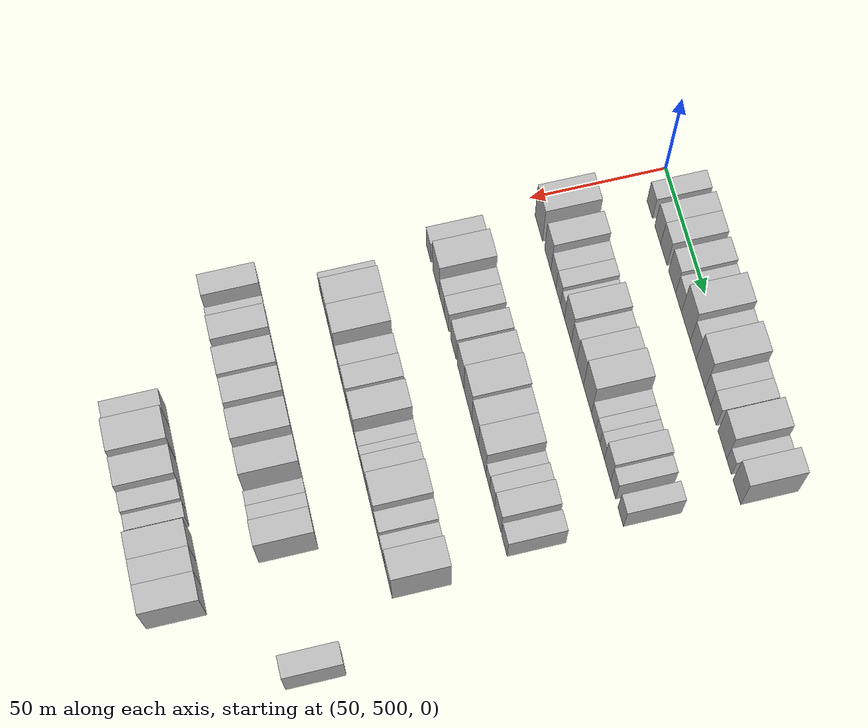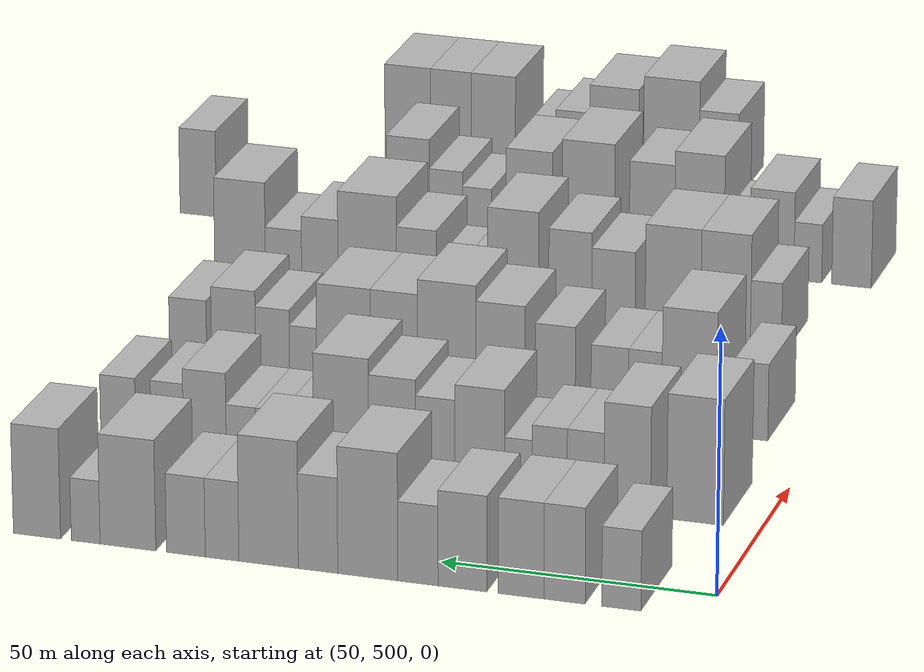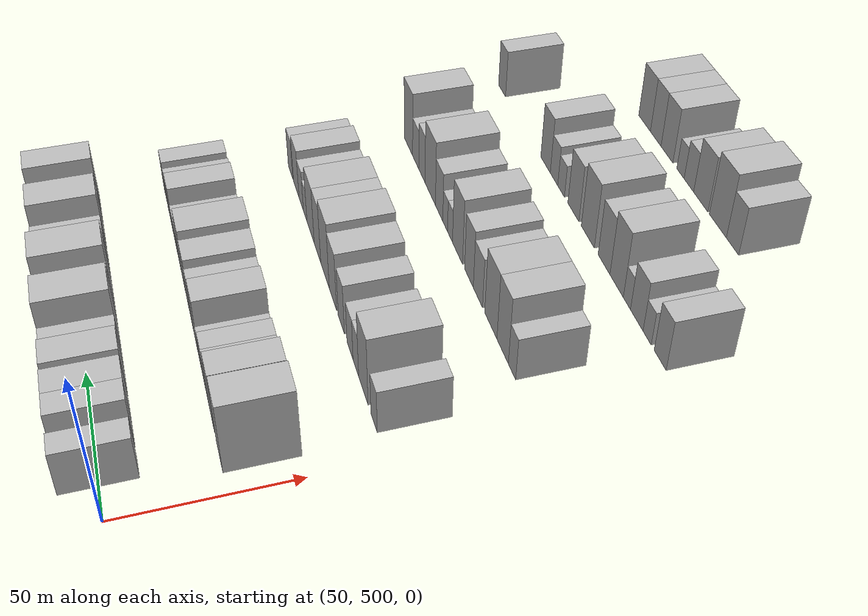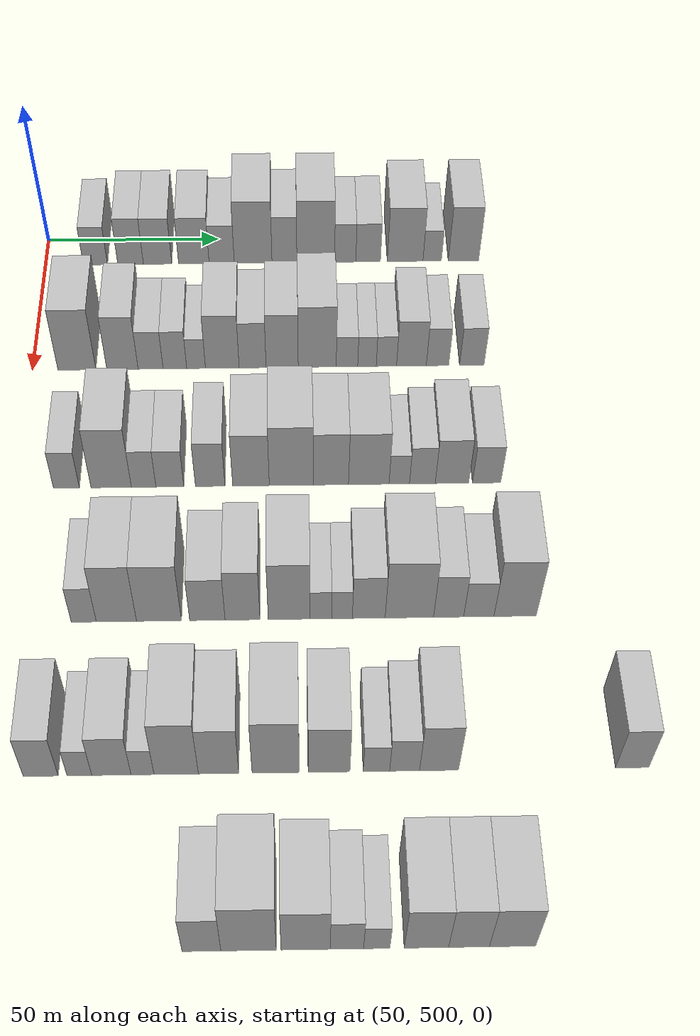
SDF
<sdf version="1.6">
 <world name="default">
  <model name="building_126">
   <static>1</static>
   <pose>50.0000 514.3777 0 0.000000 0.000000 0.000000</pose>
   <link name="link">
    <pose>0 0 7.50 0 0 0</pose>
    <collision name="collision"><geometry><box><size>20.0000 7.0179 15.0000</size></box></geometry></collision>
    <visual name="visual">
     <cast_shadows>0</cast_shadows>
     <geometry><box><size>20.0000 7.0179 15.0000</size></box></geometry>
     <material>
      <script>
       <uri>model://HANNAS_wall/materials/scripts</uri>
       <uri>model://HANNAS_wall/materials/textures</uri>
       <name>vrc/HANNAS_wall</name>
      </script>
     </material>
    </visual>
   </link>
  </model>
  <model name="building_127">
   <static>1</static>
   <pose>50.0000 524.6020 0 0.000000 0.000000 0.000000</pose>
   <link name="link">
    <pose>0 0 9.00 0 0 0</pose>
    <collision name="collision"><geometry><box><size>20.0000 7.4308 18.0000</size></box></geometry></collision>
    <visual name="visual">
     <cast_shadows>0</cast_shadows>
     <geometry><box><size>20.0000 7.4308 18.0000</size></box></geometry>
     <material>
      <script>
       <uri>model://HANNAS_wall/materials/scripts</uri>
       <uri>model://HANNAS_wall/materials/textures</uri>
       <name>vrc/HANNAS_wall</name>
      </script>
     </material>
    </visual>
   </link>
  </model>
  <model name="building_128">
   <static>1</static>
   <pose>50.0000 532.4468 0 0.000000 0.000000 0.000000</pose>
   <link name="link">
    <pose>0 0 9.00 0 0 0</pose>
    <collision name="collision"><geometry><box><size>20.0000 8.2587 18.0000</size></box></geometry></collision>
    <visual name="visual">
     <cast_shadows>0</cast_shadows>
     <geometry><box><size>20.0000 8.2587 18.0000</size></box></geometry>
     <material>
      <script>
       <uri>model://HANNAS_wall/materials/scripts</uri>
       <uri>model://HANNAS_wall/materials/textures</uri>
       <name>vrc/HANNAS_wall</name>
      </script>
     </material>
    </visual>
   </link>
  </model>
  <model name="building_129">
   <static>1</static>
   <pose>50.0000 543.0096 0 0.000000 0.000000 0.000000</pose>
   <link name="link">
    <pose>0 0 9.00 0 0 0</pose>
    <collision name="collision"><geometry><box><size>20.0000 8.8668 18.0000</size></box></geometry></collision>
    <visual name="visual">
     <cast_shadows>0</cast_shadows>
     <geometry><box><size>20.0000 8.8668 18.0000</size></box></geometry>
     <material>
      <script>
       <uri>model://HANNAS_wall/materials/scripts</uri>
       <uri>model://HANNAS_wall/materials/textures</uri>
       <name>vrc/HANNAS_wall</name>
      </script>
     </material>
    </visual>
   </link>
  </model>
  <model name="building_130">
   <static>1</static>
   <pose>50.0000 551.1101 0 0.000000 0.000000 0.000000</pose>
   <link name="link">
    <pose>0 0 7.50 0 0 0</pose>
    <collision name="collision"><geometry><box><size>20.0000 7.3343 15.0000</size></box></geometry></collision>
    <visual name="visual">
     <cast_shadows>0</cast_shadows>
     <geometry><box><size>20.0000 7.3343 15.0000</size></box></geometry>
     <material>
      <script>
       <uri>model://HANNAS_wall/materials/scripts</uri>
       <uri>model://HANNAS_wall/materials/textures</uri>
       <name>vrc/HANNAS_wall</name>
      </script>
     </material>
    </visual>
   </link>
  </model>
  <model name="building_131">
   <static>1</static>
   <pose>50.0000 560.2596 0 0.000000 0.000000 0.000000</pose>
   <link name="link">
    <pose>0 0 12.00 0 0 0</pose>
    <collision name="collision"><geometry><box><size>20.0000 10.9645 24.0000</size></box></geometry></collision>
    <visual name="visual">
     <cast_shadows>0</cast_shadows>
     <geometry><box><size>20.0000 10.9645 24.0000</size></box></geometry>
     <material>
      <script>
       <uri>model://HANNAS_wall/materials/scripts</uri>
       <uri>model://HANNAS_wall/materials/textures</uri>
       <name>vrc/HANNAS_wall</name>
      </script>
     </material>
    </visual>
   </link>
  </model>
  <model name="building_132">
   <static>1</static>
   <pose>50.0000 569.3659 0 0.000000 0.000000 0.000000</pose>
   <link name="link">
    <pose>0 0 9.00 0 0 0</pose>
    <collision name="collision"><geometry><box><size>20.0000 7.2482 18.0000</size></box></geometry></collision>
    <visual name="visual">
     <cast_shadows>0</cast_shadows>
     <geometry><box><size>20.0000 7.2482 18.0000</size></box></geometry>
     <material>
      <script>
       <uri>model://HANNAS_wall/materials/scripts</uri>
       <uri>model://HANNAS_wall/materials/textures</uri>
       <name>vrc/HANNAS_wall</name>
      </script>
     </material>
    </visual>
   </link>
  </model>
  <model name="building_133">
   <static>1</static>
   <pose>50.0000 578.4641 0 0.000000 0.000000 0.000000</pose>
   <link name="link">
    <pose>0 0 12.00 0 0 0</pose>
    <collision name="collision"><geometry><box><size>20.0000 10.9482 24.0000</size></box></geometry></collision>
    <visual name="visual">
     <cast_shadows>0</cast_shadows>
     <geometry><box><size>20.0000 10.9482 24.0000</size></box></geometry>
     <material>
      <script>
       <uri>model://HANNAS_wall/materials/scripts</uri>
       <uri>model://HANNAS_wall/materials/textures</uri>
       <name>vrc/HANNAS_wall</name>
      </script>
     </material>
    </visual>
   </link>
  </model>
  <model name="building_134">
   <static>1</static>
   <pose>50.0000 587.0475 0 0.000000 0.000000 0.000000</pose>
   <link name="link">
    <pose>0 0 7.50 0 0 0</pose>
    <collision name="collision"><geometry><box><size>20.0000 6.2187 15.0000</size></box></geometry></collision>
    <visual name="visual">
     <cast_shadows>0</cast_shadows>
     <geometry><box><size>20.0000 6.2187 15.0000</size></box></geometry>
     <material>
      <script>
       <uri>model://HANNAS_wall/materials/scripts</uri>
       <uri>model://HANNAS_wall/materials/textures</uri>
       <name>vrc/HANNAS_wall</name>
      </script>
     </material>
    </visual>
   </link>
  </model>
  <model name="building_135">
   <static>1</static>
   <pose>50.0000 593.7524 0 0.000000 0.000000 0.000000</pose>
   <link name="link">
    <pose>0 0 7.50 0 0 0</pose>
    <collision name="collision"><geometry><box><size>20.0000 7.1911 15.0000</size></box></geometry></collision>
    <visual name="visual">
     <cast_shadows>0</cast_shadows>
     <geometry><box><size>20.0000 7.1911 15.0000</size></box></geometry>
     <material>
      <script>
       <uri>model://HANNAS_wall/materials/scripts</uri>
       <uri>model://HANNAS_wall/materials/textures</uri>
       <name>vrc/HANNAS_wall</name>
      </script>
     </material>
    </visual>
   </link>
  </model>
  <model name="building_136">
   <static>1</static>
   <pose>50.0000 604.5498 0 0.000000 0.000000 0.000000</pose>
   <link name="link">
    <pose>0 0 10.50 0 0 0</pose>
    <collision name="collision"><geometry><box><size>20.0000 10.4036 21.0000</size></box></geometry></collision>
    <visual name="visual">
     <cast_shadows>0</cast_shadows>
     <geometry><box><size>20.0000 10.4036 21.0000</size></box></geometry>
     <material>
      <script>
       <uri>model://HANNAS_wall/materials/scripts</uri>
       <uri>model://HANNAS_wall/materials/textures</uri>
       <name>vrc/HANNAS_wall</name>
      </script>
     </material>
    </visual>
   </link>
  </model>
  <model name="building_137">
   <static>1</static>
   <pose>50.0000 612.4491 0 0.000000 0.000000 0.000000</pose>
   <link name="link">
    <pose>0 0 6.00 0 0 0</pose>
    <collision name="collision"><geometry><box><size>20.0000 5.3950 12.0000</size></box></geometry></collision>
    <visual name="visual">
     <cast_shadows>0</cast_shadows>
     <geometry><box><size>20.0000 5.3950 12.0000</size></box></geometry>
     <material>
      <script>
       <uri>model://HANNAS_wall/materials/scripts</uri>
       <uri>model://HANNAS_wall/materials/textures</uri>
       <name>vrc/HANNAS_wall</name>
      </script>
     </material>
    </visual>
   </link>
  </model>
  <model name="building_138">
   <static>1</static>
   <pose>50.0000 621.5763 0 0.000000 0.000000 0.000000</pose>
   <link name="link">
    <pose>0 0 10.50 0 0 0</pose>
    <collision name="collision"><geometry><box><size>20.0000 8.8594 21.0000</size></box></geometry></collision>
    <visual name="visual">
     <cast_shadows>0</cast_shadows>
     <geometry><box><size>20.0000 8.8594 21.0000</size></box></geometry>
     <material>
      <script>
       <uri>model://HANNAS_wall/materials/scripts</uri>
       <uri>model://HANNAS_wall/materials/textures</uri>
       <name>vrc/HANNAS_wall</name>
      </script>
     </material>
    </visual>
   </link>
  </model>
  <model name="building_260">
   <static>1</static>
   <pose>90.0000 512.1767 0 0.000000 0.000000 0.000000</pose>
   <link name="link">
    <pose>0 0 12.00 0 0 0</pose>
    <collision name="collision"><geometry><box><size>20.0000 10.4046 24.0000</size></box></geometry></collision>
    <visual name="visual">
     <cast_shadows>0</cast_shadows>
     <geometry><box><size>20.0000 10.4046 24.0000</size></box></geometry>
     <material>
      <script>
       <uri>model://HANNAS_wall/materials/scripts</uri>
       <uri>model://HANNAS_wall/materials/textures</uri>
       <name>vrc/HANNAS_wall</name>
      </script>
     </material>
    </visual>
   </link>
  </model>
  <model name="building_261">
   <static>1</static>
   <pose>90.0000 524.6724 0 0.000000 0.000000 0.000000</pose>
   <link name="link">
    <pose>0 0 10.50 0 0 0</pose>
    <collision name="collision"><geometry><box><size>20.0000 8.5867 21.0000</size></box></geometry></collision>
    <visual name="visual">
     <cast_shadows>0</cast_shadows>
     <geometry><box><size>20.0000 8.5867 21.0000</size></box></geometry>
     <material>
      <script>
       <uri>model://HANNAS_wall/materials/scripts</uri>
       <uri>model://HANNAS_wall/materials/textures</uri>
       <name>vrc/HANNAS_wall</name>
      </script>
     </material>
    </visual>
   </link>
  </model>
  <model name="building_262">
   <static>1</static>
   <pose>90.0000 532.3914 0 0.000000 0.000000 0.000000</pose>
   <link name="link">
    <pose>0 0 7.50 0 0 0</pose>
    <collision name="collision"><geometry><box><size>20.0000 6.8514 15.0000</size></box></geometry></collision>
    <visual name="visual">
     <cast_shadows>0</cast_shadows>
     <geometry><box><size>20.0000 6.8514 15.0000</size></box></geometry>
     <material>
      <script>
       <uri>model://HANNAS_wall/materials/scripts</uri>
       <uri>model://HANNAS_wall/materials/textures</uri>
       <name>vrc/HANNAS_wall</name>
      </script>
     </material>
    </visual>
   </link>
  </model>
  <model name="building_263">
   <static>1</static>
   <pose>90.0000 539.0624 0 0.000000 0.000000 0.000000</pose>
   <link name="link">
    <pose>0 0 7.50 0 0 0</pose>
    <collision name="collision"><geometry><box><size>20.0000 6.4906 15.0000</size></box></geometry></collision>
    <visual name="visual">
     <cast_shadows>0</cast_shadows>
     <geometry><box><size>20.0000 6.4906 15.0000</size></box></geometry>
     <material>
      <script>
       <uri>model://HANNAS_wall/materials/scripts</uri>
       <uri>model://HANNAS_wall/materials/textures</uri>
       <name>vrc/HANNAS_wall</name>
      </script>
     </material>
    </visual>
   </link>
  </model>
  <model name="building_264">
   <static>1</static>
   <pose>90.0000 544.8872 0 0.000000 0.000000 0.000000</pose>
   <link name="link">
    <pose>0 0 6.00 0 0 0</pose>
    <collision name="collision"><geometry><box><size>20.0000 5.1589 12.0000</size></box></geometry></collision>
    <visual name="visual">
     <cast_shadows>0</cast_shadows>
     <geometry><box><size>20.0000 5.1589 12.0000</size></box></geometry>
     <material>
      <script>
       <uri>model://HANNAS_wall/materials/scripts</uri>
       <uri>model://HANNAS_wall/materials/textures</uri>
       <name>vrc/HANNAS_wall</name>
      </script>
     </material>
    </visual>
   </link>
  </model>
  <model name="building_265">
   <static>1</static>
   <pose>90.0000 552.0892 0 0.000000 0.000000 0.000000</pose>
   <link name="link">
    <pose>0 0 10.50 0 0 0</pose>
    <collision name="collision"><geometry><box><size>20.0000 9.2452 21.0000</size></box></geometry></collision>
    <visual name="visual">
     <cast_shadows>0</cast_shadows>
     <geometry><box><size>20.0000 9.2452 21.0000</size></box></geometry>
     <material>
      <script>
       <uri>model://HANNAS_wall/materials/scripts</uri>
       <uri>model://HANNAS_wall/materials/textures</uri>
       <name>vrc/HANNAS_wall</name>
      </script>
     </material>
    </visual>
   </link>
  </model>
  <model name="building_266">
   <static>1</static>
   <pose>90.0000 560.4127 0 0.000000 0.000000 0.000000</pose>
   <link name="link">
    <pose>0 0 9.00 0 0 0</pose>
    <collision name="collision"><geometry><box><size>20.0000 7.4017 18.0000</size></box></geometry></collision>
    <visual name="visual">
     <cast_shadows>0</cast_shadows>
     <geometry><box><size>20.0000 7.4017 18.0000</size></box></geometry>
     <material>
      <script>
       <uri>model://HANNAS_wall/materials/scripts</uri>
       <uri>model://HANNAS_wall/materials/textures</uri>
       <name>vrc/HANNAS_wall</name>
      </script>
     </material>
    </visual>
   </link>
  </model>
  <model name="building_267">
   <static>1</static>
   <pose>90.0000 568.5266 0 0.000000 0.000000 0.000000</pose>
   <link name="link">
    <pose>0 0 10.50 0 0 0</pose>
    <collision name="collision"><geometry><box><size>20.0000 8.8262 21.0000</size></box></geometry></collision>
    <visual name="visual">
     <cast_shadows>0</cast_shadows>
     <geometry><box><size>20.0000 8.8262 21.0000</size></box></geometry>
     <material>
      <script>
       <uri>model://HANNAS_wall/materials/scripts</uri>
       <uri>model://HANNAS_wall/materials/textures</uri>
       <name>vrc/HANNAS_wall</name>
      </script>
     </material>
    </visual>
   </link>
  </model>
  <model name="building_268">
   <static>1</static>
   <pose>90.0000 578.1604 0 0.000000 0.000000 0.000000</pose>
   <link name="link">
    <pose>0 0 12.00 0 0 0</pose>
    <collision name="collision"><geometry><box><size>20.0000 10.4413 24.0000</size></box></geometry></collision>
    <visual name="visual">
     <cast_shadows>0</cast_shadows>
     <geometry><box><size>20.0000 10.4413 24.0000</size></box></geometry>
     <material>
      <script>
       <uri>model://HANNAS_wall/materials/scripts</uri>
       <uri>model://HANNAS_wall/materials/textures</uri>
       <name>vrc/HANNAS_wall</name>
      </script>
     </material>
    </visual>
   </link>
  </model>
  <model name="building_269">
   <static>1</static>
   <pose>90.0000 586.3429 0 0.000000 0.000000 0.000000</pose>
   <link name="link">
    <pose>0 0 6.00 0 0 0</pose>
    <collision name="collision"><geometry><box><size>20.0000 5.9238 12.0000</size></box></geometry></collision>
    <visual name="visual">
     <cast_shadows>0</cast_shadows>
     <geometry><box><size>20.0000 5.9238 12.0000</size></box></geometry>
     <material>
      <script>
       <uri>model://HANNAS_wall/materials/scripts</uri>
       <uri>model://HANNAS_wall/materials/textures</uri>
       <name>vrc/HANNAS_wall</name>
      </script>
     </material>
    </visual>
   </link>
  </model>
  <model name="building_270">
   <static>1</static>
   <pose>90.0000 591.8564 0 0.000000 0.000000 0.000000</pose>
   <link name="link">
    <pose>0 0 6.00 0 0 0</pose>
    <collision name="collision"><geometry><box><size>20.0000 5.1031 12.0000</size></box></geometry></collision>
    <visual name="visual">
     <cast_shadows>0</cast_shadows>
     <geometry><box><size>20.0000 5.1031 12.0000</size></box></geometry>
     <material>
      <script>
       <uri>model://HANNAS_wall/materials/scripts</uri>
       <uri>model://HANNAS_wall/materials/textures</uri>
       <name>vrc/HANNAS_wall</name>
      </script>
     </material>
    </visual>
   </link>
  </model>
  <model name="building_271">
   <static>1</static>
   <pose>90.0000 597.2039 0 0.000000 0.000000 0.000000</pose>
   <link name="link">
    <pose>0 0 6.00 0 0 0</pose>
    <collision name="collision"><geometry><box><size>20.0000 5.5918 12.0000</size></box></geometry></collision>
    <visual name="visual">
     <cast_shadows>0</cast_shadows>
     <geometry><box><size>20.0000 5.5918 12.0000</size></box></geometry>
     <material>
      <script>
       <uri>model://HANNAS_wall/materials/scripts</uri>
       <uri>model://HANNAS_wall/materials/textures</uri>
       <name>vrc/HANNAS_wall</name>
      </script>
     </material>
    </visual>
   </link>
  </model>
  <model name="building_272">
   <static>1</static>
   <pose>90.0000 604.0947 0 0.000000 0.000000 0.000000</pose>
   <link name="link">
    <pose>0 0 9.00 0 0 0</pose>
    <collision name="collision"><geometry><box><size>20.0000 8.1898 18.0000</size></box></geometry></collision>
    <visual name="visual">
     <cast_shadows>0</cast_shadows>
     <geometry><box><size>20.0000 8.1898 18.0000</size></box></geometry>
     <material>
      <script>
       <uri>model://HANNAS_wall/materials/scripts</uri>
       <uri>model://HANNAS_wall/materials/textures</uri>
       <name>vrc/HANNAS_wall</name>
      </script>
     </material>
    </visual>
   </link>
  </model>
  <model name="building_273">
   <static>1</static>
   <pose>90.0000 611.2768 0 0.000000 0.000000 0.000000</pose>
   <link name="link">
    <pose>0 0 7.50 0 0 0</pose>
    <collision name="collision"><geometry><box><size>20.0000 6.1744 15.0000</size></box></geometry></collision>
    <visual name="visual">
     <cast_shadows>0</cast_shadows>
     <geometry><box><size>20.0000 6.1744 15.0000</size></box></geometry>
     <material>
      <script>
       <uri>model://HANNAS_wall/materials/scripts</uri>
       <uri>model://HANNAS_wall/materials/textures</uri>
       <name>vrc/HANNAS_wall</name>
      </script>
     </material>
    </visual>
   </link>
  </model>
  <model name="building_274">
   <static>1</static>
   <pose>90.0000 620.7329 0 0.000000 0.000000 0.000000</pose>
   <link name="link">
    <pose>0 0 7.50 0 0 0</pose>
    <collision name="collision"><geometry><box><size>20.0000 6.7377 15.0000</size></box></geometry></collision>
    <visual name="visual">
     <cast_shadows>0</cast_shadows>
     <geometry><box><size>20.0000 6.7377 15.0000</size></box></geometry>
     <material>
      <script>
       <uri>model://HANNAS_wall/materials/scripts</uri>
       <uri>model://HANNAS_wall/materials/textures</uri>
       <name>vrc/HANNAS_wall</name>
      </script>
     </material>
    </visual>
   </link>
  </model>
  <model name="building_394">
   <static>1</static>
   <pose>130.0000 512.6550 0 0.000000 0.000000 0.000000</pose>
   <link name="link">
    <pose>0 0 7.50 0 0 0</pose>
    <collision name="collision"><geometry><box><size>20.0000 6.6731 15.0000</size></box></geometry></collision>
    <visual name="visual">
     <cast_shadows>0</cast_shadows>
     <geometry><box><size>20.0000 6.6731 15.0000</size></box></geometry>
     <material>
      <script>
       <uri>model://HANNAS_wall/materials/scripts</uri>
       <uri>model://HANNAS_wall/materials/textures</uri>
       <name>vrc/HANNAS_wall</name>
      </script>
     </material>
    </visual>
   </link>
  </model>
  <model name="building_395">
   <static>1</static>
   <pose>130.0000 524.1997 0 0.000000 0.000000 0.000000</pose>
   <link name="link">
    <pose>0 0 12.00 0 0 0</pose>
    <collision name="collision"><geometry><box><size>20.0000 10.4162 24.0000</size></box></geometry></collision>
    <visual name="visual">
     <cast_shadows>0</cast_shadows>
     <geometry><box><size>20.0000 10.4162 24.0000</size></box></geometry>
     <material>
      <script>
       <uri>model://HANNAS_wall/materials/scripts</uri>
       <uri>model://HANNAS_wall/materials/textures</uri>
       <name>vrc/HANNAS_wall</name>
      </script>
     </material>
    </visual>
   </link>
  </model>
  <model name="building_396">
   <static>1</static>
   <pose>130.0000 532.5850 0 0.000000 0.000000 0.000000</pose>
   <link name="link">
    <pose>0 0 7.50 0 0 0</pose>
    <collision name="collision"><geometry><box><size>20.0000 6.3542 15.0000</size></box></geometry></collision>
    <visual name="visual">
     <cast_shadows>0</cast_shadows>
     <geometry><box><size>20.0000 6.3542 15.0000</size></box></geometry>
     <material>
      <script>
       <uri>model://HANNAS_wall/materials/scripts</uri>
       <uri>model://HANNAS_wall/materials/textures</uri>
       <name>vrc/HANNAS_wall</name>
      </script>
     </material>
    </visual>
   </link>
  </model>
  <model name="building_397">
   <static>1</static>
   <pose>130.0000 539.3595 0 0.000000 0.000000 0.000000</pose>
   <link name="link">
    <pose>0 0 7.50 0 0 0</pose>
    <collision name="collision"><geometry><box><size>20.0000 7.1948 15.0000</size></box></geometry></collision>
    <visual name="visual">
     <cast_shadows>0</cast_shadows>
     <geometry><box><size>20.0000 7.1948 15.0000</size></box></geometry>
     <material>
      <script>
       <uri>model://HANNAS_wall/materials/scripts</uri>
       <uri>model://HANNAS_wall/materials/textures</uri>
       <name>vrc/HANNAS_wall</name>
      </script>
     </material>
    </visual>
   </link>
  </model>
  <model name="building_398">
   <static>1</static>
   <pose>130.0000 549.7693 0 0.000000 0.000000 0.000000</pose>
   <link name="link">
    <pose>0 0 9.00 0 0 0</pose>
    <collision name="collision"><geometry><box><size>20.0000 7.6249 18.0000</size></box></geometry></collision>
    <visual name="visual">
     <cast_shadows>0</cast_shadows>
     <geometry><box><size>20.0000 7.6249 18.0000</size></box></geometry>
     <material>
      <script>
       <uri>model://HANNAS_wall/materials/scripts</uri>
       <uri>model://HANNAS_wall/materials/textures</uri>
       <name>vrc/HANNAS_wall</name>
      </script>
     </material>
    </visual>
   </link>
  </model>
  <model name="building_399">
   <static>1</static>
   <pose>130.0000 560.3059 0 0.000000 0.000000 0.000000</pose>
   <link name="link">
    <pose>0 0 10.50 0 0 0</pose>
    <collision name="collision"><geometry><box><size>20.0000 9.4483 21.0000</size></box></geometry></collision>
    <visual name="visual">
     <cast_shadows>0</cast_shadows>
     <geometry><box><size>20.0000 9.4483 21.0000</size></box></geometry>
     <material>
      <script>
       <uri>model://HANNAS_wall/materials/scripts</uri>
       <uri>model://HANNAS_wall/materials/textures</uri>
       <name>vrc/HANNAS_wall</name>
      </script>
     </material>
    </visual>
   </link>
  </model>
  <model name="building_400">
   <static>1</static>
   <pose>130.0000 570.6933 0 0.000000 0.000000 0.000000</pose>
   <link name="link">
    <pose>0 0 12.00 0 0 0</pose>
    <collision name="collision"><geometry><box><size>20.0000 11.3264 24.0000</size></box></geometry></collision>
    <visual name="visual">
     <cast_shadows>0</cast_shadows>
     <geometry><box><size>20.0000 11.3264 24.0000</size></box></geometry>
     <material>
      <script>
       <uri>model://HANNAS_wall/materials/scripts</uri>
       <uri>model://HANNAS_wall/materials/textures</uri>
       <name>vrc/HANNAS_wall</name>
      </script>
     </material>
    </visual>
   </link>
  </model>
  <model name="building_401">
   <static>1</static>
   <pose>130.0000 580.9328 0 0.000000 0.000000 0.000000</pose>
   <link name="link">
    <pose>0 0 10.50 0 0 0</pose>
    <collision name="collision"><geometry><box><size>20.0000 9.1527 21.0000</size></box></geometry></collision>
    <visual name="visual">
     <cast_shadows>0</cast_shadows>
     <geometry><box><size>20.0000 9.1527 21.0000</size></box></geometry>
     <material>
      <script>
       <uri>model://HANNAS_wall/materials/scripts</uri>
       <uri>model://HANNAS_wall/materials/textures</uri>
       <name>vrc/HANNAS_wall</name>
      </script>
     </material>
    </visual>
   </link>
  </model>
  <model name="building_402">
   <static>1</static>
   <pose>130.0000 590.7539 0 0.000000 0.000000 0.000000</pose>
   <link name="link">
    <pose>0 0 10.50 0 0 0</pose>
    <collision name="collision"><geometry><box><size>20.0000 10.4896 21.0000</size></box></geometry></collision>
    <visual name="visual">
     <cast_shadows>0</cast_shadows>
     <geometry><box><size>20.0000 10.4896 21.0000</size></box></geometry>
     <material>
      <script>
       <uri>model://HANNAS_wall/materials/scripts</uri>
       <uri>model://HANNAS_wall/materials/textures</uri>
       <name>vrc/HANNAS_wall</name>
      </script>
     </material>
    </visual>
   </link>
  </model>
  <model name="building_403">
   <static>1</static>
   <pose>130.0000 598.6498 0 0.000000 0.000000 0.000000</pose>
   <link name="link">
    <pose>0 0 6.00 0 0 0</pose>
    <collision name="collision"><geometry><box><size>20.0000 5.3022 12.0000</size></box></geometry></collision>
    <visual name="visual">
     <cast_shadows>0</cast_shadows>
     <geometry><box><size>20.0000 5.3022 12.0000</size></box></geometry>
     <material>
      <script>
       <uri>model://HANNAS_wall/materials/scripts</uri>
       <uri>model://HANNAS_wall/materials/textures</uri>
       <name>vrc/HANNAS_wall</name>
      </script>
     </material>
    </visual>
   </link>
  </model>
  <model name="building_404">
   <static>1</static>
   <pose>130.0000 604.6356 0 0.000000 0.000000 0.000000</pose>
   <link name="link">
    <pose>0 0 7.50 0 0 0</pose>
    <collision name="collision"><geometry><box><size>20.0000 6.6693 15.0000</size></box></geometry></collision>
    <visual name="visual">
     <cast_shadows>0</cast_shadows>
     <geometry><box><size>20.0000 6.6693 15.0000</size></box></geometry>
     <material>
      <script>
       <uri>model://HANNAS_wall/materials/scripts</uri>
       <uri>model://HANNAS_wall/materials/textures</uri>
       <name>vrc/HANNAS_wall</name>
      </script>
     </material>
    </visual>
   </link>
  </model>
  <model name="building_405">
   <static>1</static>
   <pose>130.0000 612.2999 0 0.000000 0.000000 0.000000</pose>
   <link name="link">
    <pose>0 0 9.00 0 0 0</pose>
    <collision name="collision"><geometry><box><size>20.0000 8.6594 18.0000</size></box></geometry></collision>
    <visual name="visual">
     <cast_shadows>0</cast_shadows>
     <geometry><box><size>20.0000 8.6594 18.0000</size></box></geometry>
     <material>
      <script>
       <uri>model://HANNAS_wall/materials/scripts</uri>
       <uri>model://HANNAS_wall/materials/textures</uri>
       <name>vrc/HANNAS_wall</name>
      </script>
     </material>
    </visual>
   </link>
  </model>
  <model name="building_406">
   <static>1</static>
   <pose>130.0000 621.2945 0 0.000000 0.000000 0.000000</pose>
   <link name="link">
    <pose>0 0 7.50 0 0 0</pose>
    <collision name="collision"><geometry><box><size>20.0000 7.3297 15.0000</size></box></geometry></collision>
    <visual name="visual">
     <cast_shadows>0</cast_shadows>
     <geometry><box><size>20.0000 7.3297 15.0000</size></box></geometry>
     <material>
      <script>
       <uri>model://HANNAS_wall/materials/scripts</uri>
       <uri>model://HANNAS_wall/materials/textures</uri>
       <name>vrc/HANNAS_wall</name>
      </script>
     </material>
    </visual>
   </link>
  </model>
  <model name="building_531">
   <static>1</static>
   <pose>170.0000 520.1958 0 0.000000 0.000000 0.000000</pose>
   <link name="link">
    <pose>0 0 7.50 0 0 0</pose>
    <collision name="collision"><geometry><box><size>20.0000 6.0627 15.0000</size></box></geometry></collision>
    <visual name="visual">
     <cast_shadows>0</cast_shadows>
     <geometry><box><size>20.0000 6.0627 15.0000</size></box></geometry>
     <material>
      <script>
       <uri>model://HANNAS_wall/materials/scripts</uri>
       <uri>model://HANNAS_wall/materials/textures</uri>
       <name>vrc/HANNAS_wall</name>
      </script>
     </material>
    </visual>
   </link>
  </model>
  <model name="building_532">
   <static>1</static>
   <pose>170.0000 528.0854 0 0.000000 0.000000 0.000000</pose>
   <link name="link">
    <pose>0 0 12.00 0 0 0</pose>
    <collision name="collision"><geometry><box><size>20.0000 9.7165 24.0000</size></box></geometry></collision>
    <visual name="visual">
     <cast_shadows>0</cast_shadows>
     <geometry><box><size>20.0000 9.7165 24.0000</size></box></geometry>
     <material>
      <script>
       <uri>model://HANNAS_wall/materials/scripts</uri>
       <uri>model://HANNAS_wall/materials/textures</uri>
       <name>vrc/HANNAS_wall</name>
      </script>
     </material>
    </visual>
   </link>
  </model>
  <model name="building_533">
   <static>1</static>
   <pose>170.0000 538.3766 0 0.000000 0.000000 0.000000</pose>
   <link name="link">
    <pose>0 0 12.00 0 0 0</pose>
    <collision name="collision"><geometry><box><size>20.0000 10.8659 24.0000</size></box></geometry></collision>
    <visual name="visual">
     <cast_shadows>0</cast_shadows>
     <geometry><box><size>20.0000 10.8659 24.0000</size></box></geometry>
     <material>
      <script>
       <uri>model://HANNAS_wall/materials/scripts</uri>
       <uri>model://HANNAS_wall/materials/textures</uri>
       <name>vrc/HANNAS_wall</name>
      </script>
     </material>
    </visual>
   </link>
  </model>
  <model name="building_534">
   <static>1</static>
   <pose>170.0000 550.0888 0 0.000000 0.000000 0.000000</pose>
   <link name="link">
    <pose>0 0 9.00 0 0 0</pose>
    <collision name="collision"><geometry><box><size>20.0000 8.5584 18.0000</size></box></geometry></collision>
    <visual name="visual">
     <cast_shadows>0</cast_shadows>
     <geometry><box><size>20.0000 8.5584 18.0000</size></box></geometry>
     <material>
      <script>
       <uri>model://HANNAS_wall/materials/scripts</uri>
       <uri>model://HANNAS_wall/materials/textures</uri>
       <name>vrc/HANNAS_wall</name>
      </script>
     </material>
    </visual>
   </link>
  </model>
  <model name="building_535">
   <static>1</static>
   <pose>170.0000 558.5925 0 0.000000 0.000000 0.000000</pose>
   <link name="link">
    <pose>0 0 10.50 0 0 0</pose>
    <collision name="collision"><geometry><box><size>20.0000 8.4491 21.0000</size></box></geometry></collision>
    <visual name="visual">
     <cast_shadows>0</cast_shadows>
     <geometry><box><size>20.0000 8.4491 21.0000</size></box></geometry>
     <material>
      <script>
       <uri>model://HANNAS_wall/materials/scripts</uri>
       <uri>model://HANNAS_wall/materials/textures</uri>
       <name>vrc/HANNAS_wall</name>
      </script>
     </material>
    </visual>
   </link>
  </model>
  <model name="building_536">
   <static>1</static>
   <pose>170.0000 569.8885 0 0.000000 0.000000 0.000000</pose>
   <link name="link">
    <pose>0 0 12.00 0 0 0</pose>
    <collision name="collision"><geometry><box><size>20.0000 10.1429 24.0000</size></box></geometry></collision>
    <visual name="visual">
     <cast_shadows>0</cast_shadows>
     <geometry><box><size>20.0000 10.1429 24.0000</size></box></geometry>
     <material>
      <script>
       <uri>model://HANNAS_wall/materials/scripts</uri>
       <uri>model://HANNAS_wall/materials/textures</uri>
       <name>vrc/HANNAS_wall</name>
      </script>
     </material>
    </visual>
   </link>
  </model>
  <model name="building_537">
   <static>1</static>
   <pose>170.0000 577.5580 0 0.000000 0.000000 0.000000</pose>
   <link name="link">
    <pose>0 0 6.00 0 0 0</pose>
    <collision name="collision"><geometry><box><size>20.0000 5.1961 12.0000</size></box></geometry></collision>
    <visual name="visual">
     <cast_shadows>0</cast_shadows>
     <geometry><box><size>20.0000 5.1961 12.0000</size></box></geometry>
     <material>
      <script>
       <uri>model://HANNAS_wall/materials/scripts</uri>
       <uri>model://HANNAS_wall/materials/textures</uri>
       <name>vrc/HANNAS_wall</name>
      </script>
     </material>
    </visual>
   </link>
  </model>
  <model name="building_538">
   <static>1</static>
   <pose>170.0000 582.6606 0 0.000000 0.000000 0.000000</pose>
   <link name="link">
    <pose>0 0 6.00 0 0 0</pose>
    <collision name="collision"><geometry><box><size>20.0000 5.0091 12.0000</size></box></geometry></collision>
    <visual name="visual">
     <cast_shadows>0</cast_shadows>
     <geometry><box><size>20.0000 5.0091 12.0000</size></box></geometry>
     <material>
      <script>
       <uri>model://HANNAS_wall/materials/scripts</uri>
       <uri>model://HANNAS_wall/materials/textures</uri>
       <name>vrc/HANNAS_wall</name>
      </script>
     </material>
    </visual>
   </link>
  </model>
  <model name="building_539">
   <static>1</static>
   <pose>170.0000 589.1469 0 0.000000 0.000000 0.000000</pose>
   <link name="link">
    <pose>0 0 9.00 0 0 0</pose>
    <collision name="collision"><geometry><box><size>20.0000 7.9635 18.0000</size></box></geometry></collision>
    <visual name="visual">
     <cast_shadows>0</cast_shadows>
     <geometry><box><size>20.0000 7.9635 18.0000</size></box></geometry>
     <material>
      <script>
       <uri>model://HANNAS_wall/materials/scripts</uri>
       <uri>model://HANNAS_wall/materials/textures</uri>
       <name>vrc/HANNAS_wall</name>
      </script>
     </material>
    </visual>
   </link>
  </model>
  <model name="building_540">
   <static>1</static>
   <pose>170.0000 599.0022 0 0.000000 0.000000 0.000000</pose>
   <link name="link">
    <pose>0 0 12.00 0 0 0</pose>
    <collision name="collision"><geometry><box><size>20.0000 11.7470 24.0000</size></box></geometry></collision>
    <visual name="visual">
     <cast_shadows>0</cast_shadows>
     <geometry><box><size>20.0000 11.7470 24.0000</size></box></geometry>
     <material>
      <script>
       <uri>model://HANNAS_wall/materials/scripts</uri>
       <uri>model://HANNAS_wall/materials/textures</uri>
       <name>vrc/HANNAS_wall</name>
      </script>
     </material>
    </visual>
   </link>
  </model>
  <model name="building_541">
   <static>1</static>
   <pose>170.0000 608.5410 0 0.000000 0.000000 0.000000</pose>
   <link name="link">
    <pose>0 0 9.00 0 0 0</pose>
    <collision name="collision"><geometry><box><size>20.0000 7.3306 18.0000</size></box></geometry></collision>
    <visual name="visual">
     <cast_shadows>0</cast_shadows>
     <geometry><box><size>20.0000 7.3306 18.0000</size></box></geometry>
     <material>
      <script>
       <uri>model://HANNAS_wall/materials/scripts</uri>
       <uri>model://HANNAS_wall/materials/textures</uri>
       <name>vrc/HANNAS_wall</name>
      </script>
     </material>
    </visual>
   </link>
  </model>
  <model name="building_542">
   <static>1</static>
   <pose>170.0000 615.8753 0 0.000000 0.000000 0.000000</pose>
   <link name="link">
    <pose>0 0 7.50 0 0 0</pose>
    <collision name="collision"><geometry><box><size>20.0000 7.3379 15.0000</size></box></geometry></collision>
    <visual name="visual">
     <cast_shadows>0</cast_shadows>
     <geometry><box><size>20.0000 7.3379 15.0000</size></box></geometry>
     <material>
      <script>
       <uri>model://HANNAS_wall/materials/scripts</uri>
       <uri>model://HANNAS_wall/materials/textures</uri>
       <name>vrc/HANNAS_wall</name>
      </script>
     </material>
    </visual>
   </link>
  </model>
  <model name="building_543">
   <static>1</static>
   <pose>170.0000 624.6883 0 0.000000 0.000000 0.000000</pose>
   <link name="link">
    <pose>0 0 12.00 0 0 0</pose>
    <collision name="collision"><geometry><box><size>20.0000 10.2880 24.0000</size></box></geometry></collision>
    <visual name="visual">
     <cast_shadows>0</cast_shadows>
     <geometry><box><size>20.0000 10.2880 24.0000</size></box></geometry>
     <material>
      <script>
       <uri>model://HANNAS_wall/materials/scripts</uri>
       <uri>model://HANNAS_wall/materials/textures</uri>
       <name>vrc/HANNAS_wall</name>
      </script>
     </material>
    </visual>
   </link>
  </model>
  <model name="building_674">
   <static>1</static>
   <pose>210.0000 513.5689 0 0.000000 0.000000 0.000000</pose>
   <link name="link">
    <pose>0 0 9.00 0 0 0</pose>
    <collision name="collision"><geometry><box><size>20.0000 7.8742 18.0000</size></box></geometry></collision>
    <visual name="visual">
     <cast_shadows>0</cast_shadows>
     <geometry><box><size>20.0000 7.8742 18.0000</size></box></geometry>
     <material>
      <script>
       <uri>model://HANNAS_wall/materials/scripts</uri>
       <uri>model://HANNAS_wall/materials/textures</uri>
       <name>vrc/HANNAS_wall</name>
      </script>
     </material>
    </visual>
   </link>
  </model>
  <model name="building_675">
   <static>1</static>
   <pose>210.0000 522.2904 0 0.000000 0.000000 0.000000</pose>
   <link name="link">
    <pose>0 0 6.00 0 0 0</pose>
    <collision name="collision"><geometry><box><size>20.0000 5.5687 12.0000</size></box></geometry></collision>
    <visual name="visual">
     <cast_shadows>0</cast_shadows>
     <geometry><box><size>20.0000 5.5687 12.0000</size></box></geometry>
     <material>
      <script>
       <uri>model://HANNAS_wall/materials/scripts</uri>
       <uri>model://HANNAS_wall/materials/textures</uri>
       <name>vrc/HANNAS_wall</name>
      </script>
     </material>
    </visual>
   </link>
  </model>
  <model name="building_676">
   <static>1</static>
   <pose>210.0000 529.4916 0 0.000000 0.000000 0.000000</pose>
   <link name="link">
    <pose>0 0 9.00 0 0 0</pose>
    <collision name="collision"><geometry><box><size>20.0000 8.8336 18.0000</size></box></geometry></collision>
    <visual name="visual">
     <cast_shadows>0</cast_shadows>
     <geometry><box><size>20.0000 8.8336 18.0000</size></box></geometry>
     <material>
      <script>
       <uri>model://HANNAS_wall/materials/scripts</uri>
       <uri>model://HANNAS_wall/materials/textures</uri>
       <name>vrc/HANNAS_wall</name>
      </script>
     </material>
    </visual>
   </link>
  </model>
  <model name="building_677">
   <static>1</static>
   <pose>210.0000 536.5073 0 0.000000 0.000000 0.000000</pose>
   <link name="link">
    <pose>0 0 6.00 0 0 0</pose>
    <collision name="collision"><geometry><box><size>20.0000 5.1978 12.0000</size></box></geometry></collision>
    <visual name="visual">
     <cast_shadows>0</cast_shadows>
     <geometry><box><size>20.0000 5.1978 12.0000</size></box></geometry>
     <material>
      <script>
       <uri>model://HANNAS_wall/materials/scripts</uri>
       <uri>model://HANNAS_wall/materials/textures</uri>
       <name>vrc/HANNAS_wall</name>
      </script>
     </material>
    </visual>
   </link>
  </model>
  <model name="building_678">
   <static>1</static>
   <pose>210.0000 544.0942 0 0.000000 0.000000 0.000000</pose>
   <link name="link">
    <pose>0 0 12.00 0 0 0</pose>
    <collision name="collision"><geometry><box><size>20.0000 9.9759 24.0000</size></box></geometry></collision>
    <visual name="visual">
     <cast_shadows>0</cast_shadows>
     <geometry><box><size>20.0000 9.9759 24.0000</size></box></geometry>
     <material>
      <script>
       <uri>model://HANNAS_wall/materials/scripts</uri>
       <uri>model://HANNAS_wall/materials/textures</uri>
       <name>vrc/HANNAS_wall</name>
      </script>
     </material>
    </visual>
   </link>
  </model>
  <model name="building_679">
   <static>1</static>
   <pose>210.0000 553.6552 0 0.000000 0.000000 0.000000</pose>
   <link name="link">
    <pose>0 0 10.50 0 0 0</pose>
    <collision name="collision"><geometry><box><size>20.0000 9.1461 21.0000</size></box></geometry></collision>
    <visual name="visual">
     <cast_shadows>0</cast_shadows>
     <geometry><box><size>20.0000 9.1461 21.0000</size></box></geometry>
     <material>
      <script>
       <uri>model://HANNAS_wall/materials/scripts</uri>
       <uri>model://HANNAS_wall/materials/textures</uri>
       <name>vrc/HANNAS_wall</name>
      </script>
     </material>
    </visual>
   </link>
  </model>
  <model name="building_680">
   <static>1</static>
   <pose>210.0000 566.5543 0 0.000000 0.000000 0.000000</pose>
   <link name="link">
    <pose>0 0 12.00 0 0 0</pose>
    <collision name="collision"><geometry><box><size>20.0000 10.6520 24.0000</size></box></geometry></collision>
    <visual name="visual">
     <cast_shadows>0</cast_shadows>
     <geometry><box><size>20.0000 10.6520 24.0000</size></box></geometry>
     <material>
      <script>
       <uri>model://HANNAS_wall/materials/scripts</uri>
       <uri>model://HANNAS_wall/materials/textures</uri>
       <name>vrc/HANNAS_wall</name>
      </script>
     </material>
    </visual>
   </link>
  </model>
  <model name="building_681">
   <static>1</static>
   <pose>210.0000 578.5951 0 0.000000 0.000000 0.000000</pose>
   <link name="link">
    <pose>0 0 10.50 0 0 0</pose>
    <collision name="collision"><geometry><box><size>20.0000 9.4295 21.0000</size></box></geometry></collision>
    <visual name="visual">
     <cast_shadows>0</cast_shadows>
     <geometry><box><size>20.0000 9.4295 21.0000</size></box></geometry>
     <material>
      <script>
       <uri>model://HANNAS_wall/materials/scripts</uri>
       <uri>model://HANNAS_wall/materials/textures</uri>
       <name>vrc/HANNAS_wall</name>
      </script>
     </material>
    </visual>
   </link>
  </model>
  <model name="building_682">
   <static>1</static>
   <pose>210.0000 589.2983 0 0.000000 0.000000 0.000000</pose>
   <link name="link">
    <pose>0 0 6.00 0 0 0</pose>
    <collision name="collision"><geometry><box><size>20.0000 5.9769 12.0000</size></box></geometry></collision>
    <visual name="visual">
     <cast_shadows>0</cast_shadows>
     <geometry><box><size>20.0000 5.9769 12.0000</size></box></geometry>
     <material>
      <script>
       <uri>model://HANNAS_wall/materials/scripts</uri>
       <uri>model://HANNAS_wall/materials/textures</uri>
       <name>vrc/HANNAS_wall</name>
      </script>
     </material>
    </visual>
   </link>
  </model>
  <model name="building_683">
   <static>1</static>
   <pose>210.0000 595.6629 0 0.000000 0.000000 0.000000</pose>
   <link name="link">
    <pose>0 0 7.50 0 0 0</pose>
    <collision name="collision"><geometry><box><size>20.0000 6.7523 15.0000</size></box></geometry></collision>
    <visual name="visual">
     <cast_shadows>0</cast_shadows>
     <geometry><box><size>20.0000 6.7523 15.0000</size></box></geometry>
     <material>
      <script>
       <uri>model://HANNAS_wall/materials/scripts</uri>
       <uri>model://HANNAS_wall/materials/textures</uri>
       <name>vrc/HANNAS_wall</name>
      </script>
     </material>
    </visual>
   </link>
  </model>
  <model name="building_684">
   <static>1</static>
   <pose>210.0000 603.4619 0 0.000000 0.000000 0.000000</pose>
   <link name="link">
    <pose>0 0 10.50 0 0 0</pose>
    <collision name="collision"><geometry><box><size>20.0000 8.8456 21.0000</size></box></geometry></collision>
    <visual name="visual">
     <cast_shadows>0</cast_shadows>
     <geometry><box><size>20.0000 8.8456 21.0000</size></box></geometry>
     <material>
      <script>
       <uri>model://HANNAS_wall/materials/scripts</uri>
       <uri>model://HANNAS_wall/materials/textures</uri>
       <name>vrc/HANNAS_wall</name>
      </script>
     </material>
    </visual>
   </link>
  </model>
  <model name="building_685">
   <static>1</static>
   <pose>210.0000 647.2435 0 0.000000 0.000000 0.000000</pose>
   <link name="link">
    <pose>0 0 9.00 0 0 0</pose>
    <collision name="collision"><geometry><box><size>20.0000 7.5725 18.0000</size></box></geometry></collision>
    <visual name="visual">
     <cast_shadows>0</cast_shadows>
     <geometry><box><size>20.0000 7.5725 18.0000</size></box></geometry>
     <material>
      <script>
       <uri>model://HANNAS_wall/materials/scripts</uri>
       <uri>model://HANNAS_wall/materials/textures</uri>
       <name>vrc/HANNAS_wall</name>
      </script>
     </material>
    </visual>
   </link>
  </model>
  <model name="building_806">
   <static>1</static>
   <pose>250.0000 550.9389 0 0.000000 0.000000 0.000000</pose>
   <link name="link">
    <pose>0 0 9.00 0 0 0</pose>
    <collision name="collision"><geometry><box><size>20.0000 8.1329 18.0000</size></box></geometry></collision>
    <visual name="visual">
     <cast_shadows>0</cast_shadows>
     <geometry><box><size>20.0000 8.1329 18.0000</size></box></geometry>
     <material>
      <script>
       <uri>model://HANNAS_wall/materials/scripts</uri>
       <uri>model://HANNAS_wall/materials/textures</uri>
       <name>vrc/HANNAS_wall</name>
      </script>
     </material>
    </visual>
   </link>
  </model>
  <model name="building_807">
   <static>1</static>
   <pose>250.0000 560.8052 0 0.000000 0.000000 0.000000</pose>
   <link name="link">
    <pose>0 0 12.00 0 0 0</pose>
    <collision name="collision"><geometry><box><size>20.0000 11.5997 24.0000</size></box></geometry></collision>
    <visual name="visual">
     <cast_shadows>0</cast_shadows>
     <geometry><box><size>20.0000 11.5997 24.0000</size></box></geometry>
     <material>
      <script>
       <uri>model://HANNAS_wall/materials/scripts</uri>
       <uri>model://HANNAS_wall/materials/textures</uri>
       <name>vrc/HANNAS_wall</name>
      </script>
     </material>
    </visual>
   </link>
  </model>
  <model name="building_808">
   <static>1</static>
   <pose>250.0000 572.7375 0 0.000000 0.000000 0.000000</pose>
   <link name="link">
    <pose>0 0 10.50 0 0 0</pose>
    <collision name="collision"><geometry><box><size>20.0000 10.2649 21.0000</size></box></geometry></collision>
    <visual name="visual">
     <cast_shadows>0</cast_shadows>
     <geometry><box><size>20.0000 10.2649 21.0000</size></box></geometry>
     <material>
      <script>
       <uri>model://HANNAS_wall/materials/scripts</uri>
       <uri>model://HANNAS_wall/materials/textures</uri>
       <name>vrc/HANNAS_wall</name>
      </script>
     </material>
    </visual>
   </link>
  </model>
  <model name="building_809">
   <static>1</static>
   <pose>250.0000 581.3819 0 0.000000 0.000000 0.000000</pose>
   <link name="link">
    <pose>0 0 7.50 0 0 0</pose>
    <collision name="collision"><geometry><box><size>20.0000 7.0239 15.0000</size></box></geometry></collision>
    <visual name="visual">
     <cast_shadows>0</cast_shadows>
     <geometry><box><size>20.0000 7.0239 15.0000</size></box></geometry>
     <material>
      <script>
       <uri>model://HANNAS_wall/materials/scripts</uri>
       <uri>model://HANNAS_wall/materials/textures</uri>
       <name>vrc/HANNAS_wall</name>
      </script>
     </material>
    </visual>
   </link>
  </model>
  <model name="building_810">
   <static>1</static>
   <pose>250.0000 587.6523 0 0.000000 0.000000 0.000000</pose>
   <link name="link">
    <pose>0 0 6.00 0 0 0</pose>
    <collision name="collision"><geometry><box><size>20.0000 5.5169 12.0000</size></box></geometry></collision>
    <visual name="visual">
     <cast_shadows>0</cast_shadows>
     <geometry><box><size>20.0000 5.5169 12.0000</size></box></geometry>
     <material>
      <script>
       <uri>model://HANNAS_wall/materials/scripts</uri>
       <uri>model://HANNAS_wall/materials/textures</uri>
       <name>vrc/HANNAS_wall</name>
      </script>
     </material>
    </visual>
   </link>
  </model>
  <model name="building_811">
   <static>1</static>
   <pose>250.0000 598.0739 0 0.000000 0.000000 0.000000</pose>
   <link name="link">
    <pose>0 0 10.50 0 0 0</pose>
    <collision name="collision"><geometry><box><size>20.0000 9.3263 21.0000</size></box></geometry></collision>
    <visual name="visual">
     <cast_shadows>0</cast_shadows>
     <geometry><box><size>20.0000 9.3263 21.0000</size></box></geometry>
     <material>
      <script>
       <uri>model://HANNAS_wall/materials/scripts</uri>
       <uri>model://HANNAS_wall/materials/textures</uri>
       <name>vrc/HANNAS_wall</name>
      </script>
     </material>
    </visual>
   </link>
  </model>
  <model name="building_812">
   <static>1</static>
   <pose>250.0000 607.0191 0 0.000000 0.000000 0.000000</pose>
   <link name="link">
    <pose>0 0 10.50 0 0 0</pose>
    <collision name="collision"><geometry><box><size>20.0000 8.5641 21.0000</size></box></geometry></collision>
    <visual name="visual">
     <cast_shadows>0</cast_shadows>
     <geometry><box><size>20.0000 8.5641 21.0000</size></box></geometry>
     <material>
      <script>
       <uri>model://HANNAS_wall/materials/scripts</uri>
       <uri>model://HANNAS_wall/materials/textures</uri>
       <name>vrc/HANNAS_wall</name>
      </script>
     </material>
    </visual>
   </link>
  </model>
  <model name="building_813">
   <static>1</static>
   <pose>250.0000 616.1618 0 0.000000 0.000000 0.000000</pose>
   <link name="link">
    <pose>0 0 10.50 0 0 0</pose>
    <collision name="collision"><geometry><box><size>20.0000 9.7214 21.0000</size></box></geometry></collision>
    <visual name="visual">
     <cast_shadows>0</cast_shadows>
     <geometry><box><size>20.0000 9.7214 21.0000</size></box></geometry>
     <material>
      <script>
       <uri>model://HANNAS_wall/materials/scripts</uri>
       <uri>model://HANNAS_wall/materials/textures</uri>
       <name>vrc/HANNAS_wall</name>
      </script>
     </material>
    </visual>
   </link>
  </model>
 </world>
</sdf>
